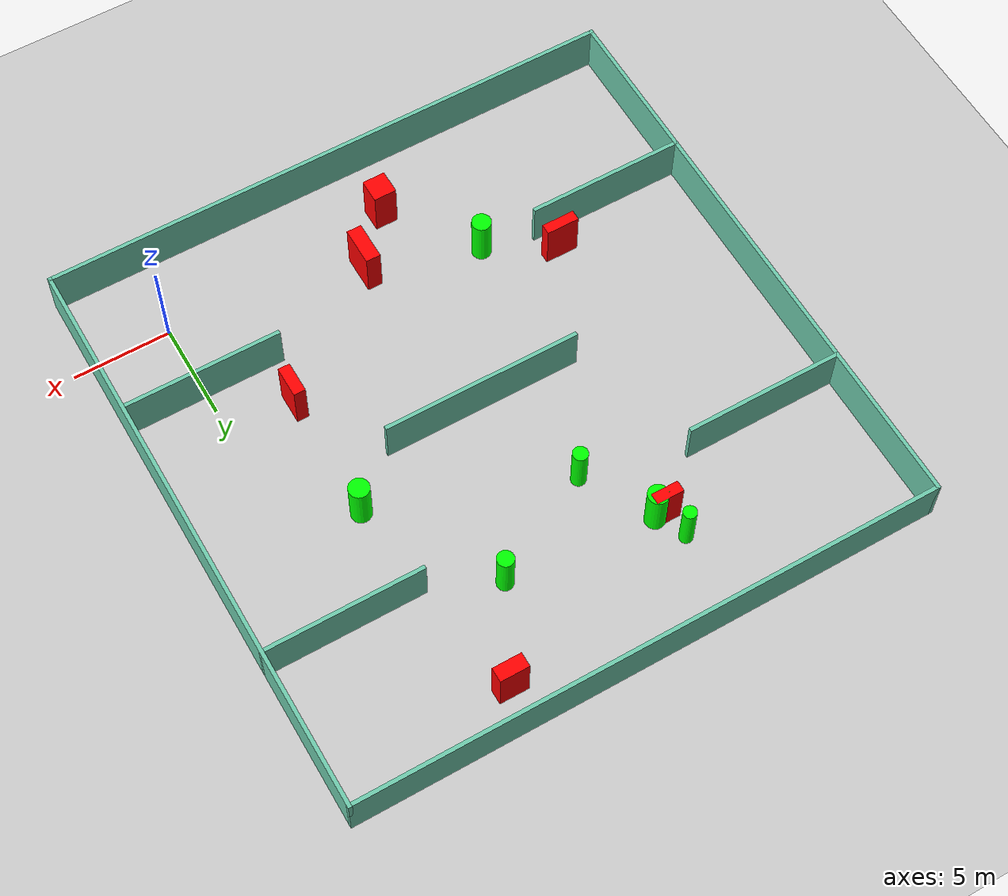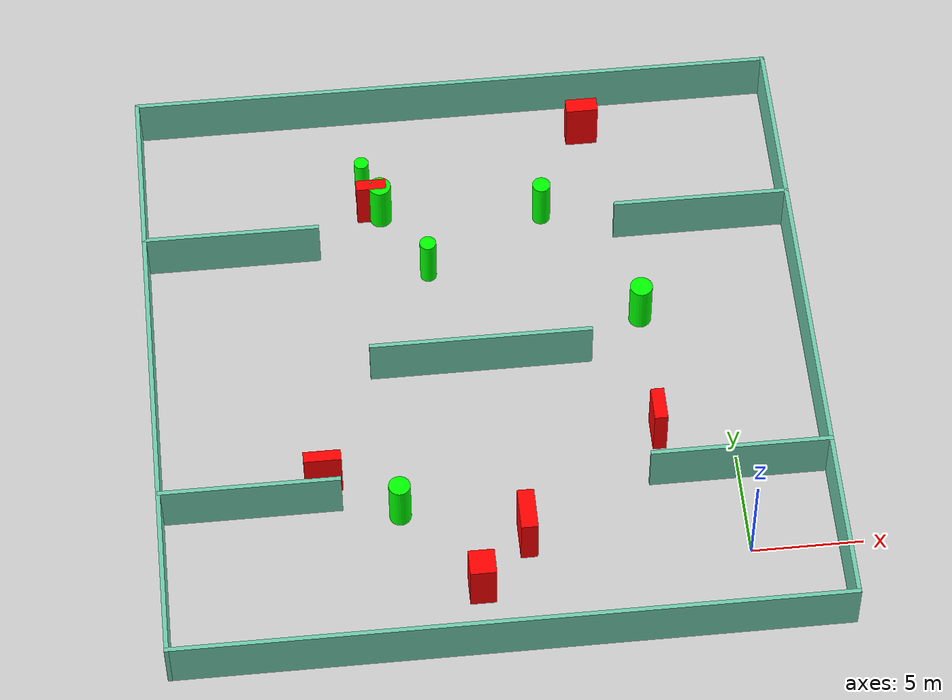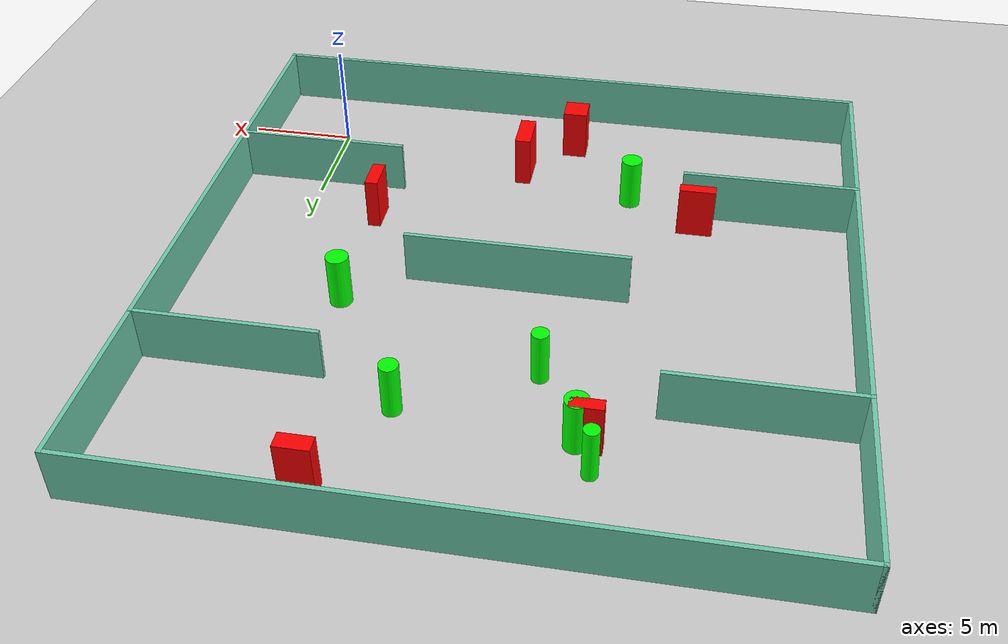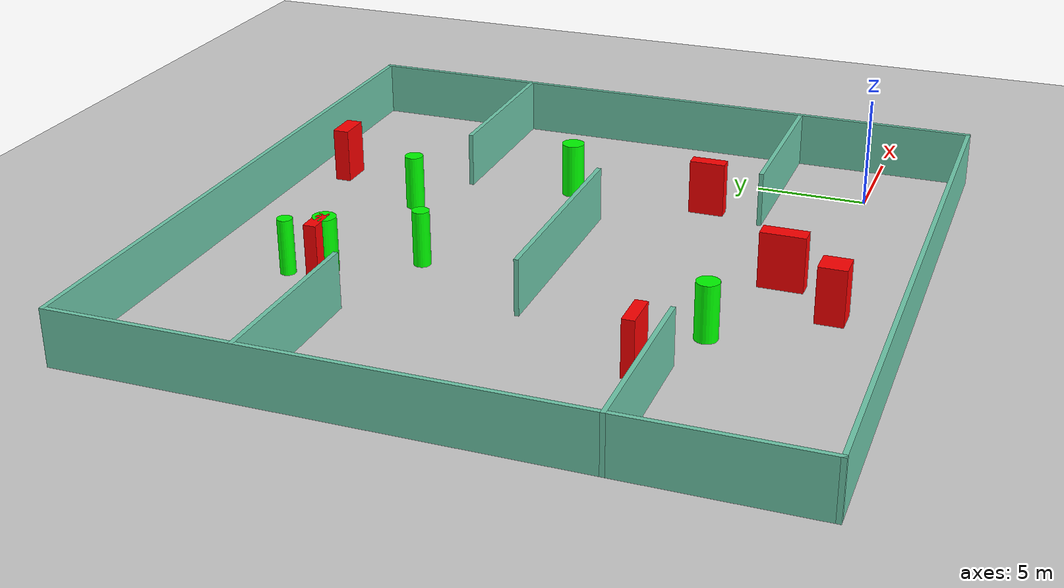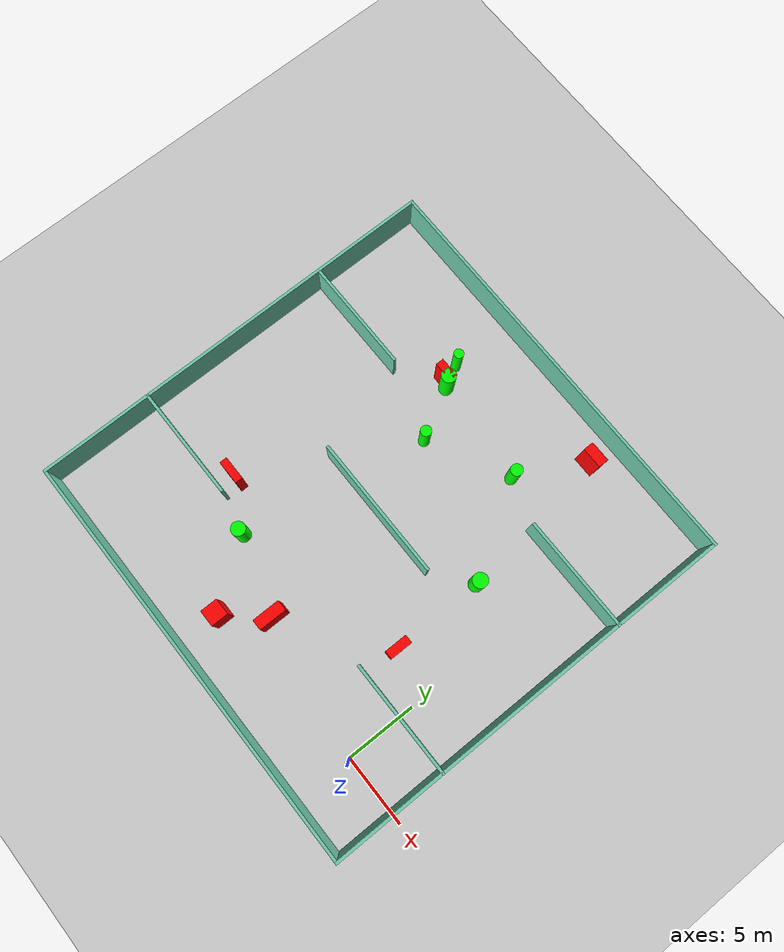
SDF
<sdf version="1.7">
 <world name="default">
  <light name="sun" type="directional">
   <pose>0 0 10 0 -0 0</pose>
   <diffuse>0.8 0.8 0.8 1</diffuse>
   <specular>0.2 0.2 0.2 1</specular>
   <attenuation>
    <range>1000</range>
    <constant>0.9</constant>
    <linear>0.01</linear>
    <quadratic>0.001</quadratic>
   </attenuation>
   <direction>-0.5 0.1 -0.9</direction>
   <spot><inner_angle>0</inner_angle><outer_angle>0</outer_angle><falloff>0</falloff></spot>
  </light>
  <model name="ground_plane">
   <static>1</static>
   <link name="link">
    <collision name="collision">
     <geometry><plane><normal>0 0 1</normal><size>100 100</size></plane></geometry>
     <surface>
      <contact><collide_bitmask>65535</collide_bitmask></contact>
      <friction><ode><mu>100</mu><mu2>50</mu2></ode></friction>
     </surface>
    </collision>
    <visual name="visual">
     <cast_shadows>0</cast_shadows>
     <geometry><plane><normal>0 0 1</normal><size>100 100</size></plane></geometry>
     <material>
      <script><uri>file://media/materials/scripts/gazebo.material</uri><name>Gazebo/Grey</name></script>
     </material>
    </visual>
   </link>
  </model>
  <gravity>0 0 -9.8</gravity>
  <magnetic_field>6e-06 2.3e-05 -4.2e-05</magnetic_field>
  <atmosphere type="adiabatic"/>
  <physics type="ode">
   <max_step_size>0.001</max_step_size>
   <real_time_factor>1</real_time_factor>
   <real_time_update_rate>1000</real_time_update_rate>
  </physics>
  <scene><ambient>0.4 0.4 0.4 1</ambient><background>0.7 0.7 0.7 1</background><shadows>1</shadows></scene>
  <spherical_coordinates>
   <surface_model>EARTH_WGS84</surface_model>
   <latitude_deg>0</latitude_deg>
   <longitude_deg>0</longitude_deg>
   <elevation>0</elevation>
   <heading_deg>0</heading_deg>
  </spherical_coordinates>
  <model name="my_base_walls">
   <link name="Wall_10">
    <collision name="Wall_10_Collision">
     <geometry><box><size>8.2 0.2 2.5</size></box></geometry>
     <pose>0 0 1.25 0 -0 0</pose>
    </collision>
    <visual name="Wall_10_Visual">
     <pose>0 0 1.25 0 -0 0</pose>
     <geometry><box><size>8.2 0.2 2.5</size></box></geometry>
     <material>
      <script><uri>file://media/materials/scripts/gazebo.material</uri><name>Gazebo/Grey</name></script>
      <ambient>0.435294 0.796078 0.67451 1</ambient>
     </material>
     <meta><layer>0</layer></meta>
    </visual>
    <pose>-11 -7 0 0 -0 0</pose>
   </link>
   <link name="Wall_12">
    <collision name="Wall_12_Collision">
     <geometry><box><size>8.2 0.2 2.5</size></box></geometry>
     <pose>0 0 1.25 0 -0 0</pose>
    </collision>
    <visual name="Wall_12_Visual">
     <pose>0 0 1.25 0 -0 0</pose>
     <geometry><box><size>8.2 0.2 2.5</size></box></geometry>
     <material>
      <script><uri>file://media/materials/scripts/gazebo.material</uri><name>Gazebo/Grey</name></script>
      <ambient>0.435294 0.796078 0.67451 1</ambient>
     </material>
     <meta><layer>0</layer></meta>
    </visual>
    <pose>-11 7 0 0 -0 0</pose>
   </link>
   <link name="Wall_14">
    <collision name="Wall_14_Collision">
     <geometry><box><size>8.2 0.2 2.5</size></box></geometry>
     <pose>0 0 1.25 0 -0 0</pose>
    </collision>
    <visual name="Wall_14_Visual">
     <pose>0 0 1.25 0 -0 0</pose>
     <geometry><box><size>8.2 0.2 2.5</size></box></geometry>
     <material>
      <script><uri>file://media/materials/scripts/gazebo.material</uri><name>Gazebo/Grey</name></script>
      <ambient>0.435294 0.796078 0.67451 1</ambient>
     </material>
     <meta><layer>0</layer></meta>
    </visual>
    <pose>11 7 0 0 -0 3.14159</pose>
   </link>
   <link name="Wall_16">
    <collision name="Wall_16_Collision">
     <geometry><box><size>10.2 0.2 2.5</size></box></geometry>
     <pose>0 0 1.25 0 -0 0</pose>
    </collision>
    <visual name="Wall_16_Visual">
     <pose>0 0 1.25 0 -0 0</pose>
     <geometry><box><size>10.2 0.2 2.5</size></box></geometry>
     <material>
      <script><uri>file://media/materials/scripts/gazebo.material</uri><name>Gazebo/Grey</name></script>
      <ambient>0.435294 0.796078 0.67451 1</ambient>
     </material>
     <meta><layer>0</layer></meta>
    </visual>
    <pose>0 0 0 0 -0 3.14159</pose>
   </link>
   <link name="Wall_2">
    <collision name="Wall_2_Collision">
     <geometry><box><size>30.2 0.2 2.5</size></box></geometry>
     <pose>0 0 1.25 0 -0 0</pose>
    </collision>
    <visual name="Wall_2_Visual">
     <pose>0 0 1.25 0 -0 0</pose>
     <geometry><box><size>30.2 0.2 2.5</size></box></geometry>
     <material>
      <script><uri>file://media/materials/scripts/gazebo.material</uri><name>Gazebo/Grey</name></script>
      <ambient>0.435294 0.796078 0.67451 1</ambient>
     </material>
     <meta><layer>0</layer></meta>
    </visual>
    <pose>0 -15 0 0 -0 3.14159</pose>
   </link>
   <link name="Wall_3">
    <collision name="Wall_3_Collision">
     <geometry><box><size>30.2 0.2 2.5</size></box></geometry>
     <pose>0 0 1.25 0 -0 0</pose>
    </collision>
    <visual name="Wall_3_Visual">
     <pose>0 0 1.25 0 -0 0</pose>
     <geometry><box><size>30.2 0.2 2.5</size></box></geometry>
     <material>
      <script><uri>file://media/materials/scripts/gazebo.material</uri><name>Gazebo/Grey</name></script>
      <ambient>0.435294 0.796078 0.67451 1</ambient>
     </material>
     <meta><layer>0</layer></meta>
    </visual>
    <pose>-15 0 0 0 -0 1.5708</pose>
   </link>
   <link name="Wall_4">
    <collision name="Wall_4_Collision">
     <geometry><box><size>30.2 0.2 2.5</size></box></geometry>
     <pose>0 0 1.25 0 -0 0</pose>
    </collision>
    <visual name="Wall_4_Visual">
     <pose>0 0 1.25 0 -0 0</pose>
     <geometry><box><size>30.2 0.2 2.5</size></box></geometry>
     <material>
      <script><uri>file://media/materials/scripts/gazebo.material</uri><name>Gazebo/Grey</name></script>
      <ambient>0.435294 0.796078 0.67451 1</ambient>
     </material>
     <meta><layer>0</layer></meta>
    </visual>
    <pose>0 15 0 0 -0 0</pose>
   </link>
   <link name="Wall_6">
    <collision name="Wall_6_Collision">
     <geometry><box><size>30.2 0.2 2.5</size></box></geometry>
     <pose>0 0 1.25 0 -0 0</pose>
    </collision>
    <visual name="Wall_6_Visual">
     <pose>0 0 1.25 0 -0 0</pose>
     <geometry><box><size>30.2 0.2 2.5</size></box></geometry>
     <material>
      <script><uri>file://media/materials/scripts/gazebo.material</uri><name>Gazebo/Grey</name></script>
      <ambient>0.435294 0.796078 0.67451 1</ambient>
     </material>
     <meta><layer>0</layer></meta>
    </visual>
    <pose>15 0 0 0 -0 1.5708</pose>
   </link>
   <link name="Wall_8">
    <collision name="Wall_8_Collision">
     <geometry><box><size>8.2 0.2 2.5</size></box></geometry>
     <pose>0 0 1.25 0 -0 0</pose>
    </collision>
    <visual name="Wall_8_Visual">
     <pose>0 0 1.25 0 -0 0</pose>
     <geometry><box><size>8.2 0.2 2.5</size></box></geometry>
     <material>
      <script><uri>file://media/materials/scripts/gazebo.material</uri><name>Gazebo/Grey</name></script>
      <ambient>0.435294 0.796078 0.67451 1</ambient>
     </material>
     <meta><layer>0</layer></meta>
    </visual>
    <pose>11 -7 0 0 -0 3.14159</pose>
   </link>
   <static>1</static>
   <pose>-11 11 0 0 -0 0</pose>
  </model>
  <model name="cylinder1">
   <static>1</static>
   <link name="link">
    <inertial>
     <mass>1</mass>
     <inertia><ixx>0.5</ixx><ixy>0</ixy><ixz>0</ixz><iyy>0.5</iyy><iyz>0</iyz><izz>1</izz></inertia>
    </inertial>
    <collision name="collision">
     <geometry><cylinder><radius>0.42034092675874973</radius><length>2.5</length></cylinder></geometry>
    </collision>
    <visual name="visual">
     <geometry><cylinder><radius>0.42034092675874973</radius><length>2.5</length></cylinder></geometry>
     <material>
      <ambient>0 1 0 1</ambient>
      <diffuse>0 1 0 1</diffuse>
      <specular>0.1 0.1 0.1 1</specular>
      <emissive>0 0 0 0</emissive>
     </material>
    </visual>
   </link>
   <pose>-7.35415569136422 19.426613920231144 1.25 0 0 0</pose>
  </model>
  <model name="cylinder2">
   <static>1</static>
   <link name="link">
    <inertial>
     <mass>1</mass>
     <inertia><ixx>0.5</ixx><ixy>0</ixy><ixz>0</ixz><iyy>0.5</iyy><iyz>0</iyz><izz>1</izz></inertia>
    </inertial>
    <collision name="collision">
     <geometry><cylinder><radius>0.5192235002974264</radius><length>2.5</length></cylinder></geometry>
    </collision>
    <visual name="visual">
     <geometry><cylinder><radius>0.5192235002974264</radius><length>2.5</length></cylinder></geometry>
     <material>
      <ambient>0 1 0 1</ambient>
      <diffuse>0 1 0 1</diffuse>
      <specular>0.1 0.1 0.1 1</specular>
      <emissive>0 0 0 0</emissive>
     </material>
    </visual>
   </link>
   <pose>-3.4098951919506355 13.10824842220828 1.25 0 0 0</pose>
  </model>
  <model name="cylinder3">
   <static>1</static>
   <link name="link">
    <inertial>
     <mass>1</mass>
     <inertia><ixx>0.5</ixx><ixy>0</ixy><ixz>0</ixz><iyy>0.5</iyy><iyz>0</iyz><izz>1</izz></inertia>
    </inertial>
    <collision name="collision">
     <geometry><cylinder><radius>0.34000899449073485</radius><length>2.5</length></cylinder></geometry>
    </collision>
    <visual name="visual">
     <geometry><cylinder><radius>0.34000899449073485</radius><length>2.5</length></cylinder></geometry>
     <material>
      <ambient>0 1 0 1</ambient>
      <diffuse>0 1 0 1</diffuse>
      <specular>0.1 0.1 0.1 1</specular>
      <emissive>0 0 0 0</emissive>
     </material>
    </visual>
   </link>
   <pose>-15.649905961845194 21.54122645631577 1.25 0 0 0</pose>
  </model>
  <model name="cylinder4">
   <static>1</static>
   <link name="link">
    <inertial>
     <mass>1</mass>
     <inertia><ixx>0.5</ixx><ixy>0</ixy><ixz>0</ixz><iyy>0.5</iyy><iyz>0</iyz><izz>1</izz></inertia>
    </inertial>
    <collision name="collision">
     <geometry><cylinder><radius>0.4924977645370986</radius><length>2.5</length></cylinder></geometry>
    </collision>
    <visual name="visual">
     <geometry><cylinder><radius>0.4924977645370986</radius><length>2.5</length></cylinder></geometry>
     <material>
      <ambient>0 1 0 1</ambient>
      <diffuse>0 1 0 1</diffuse>
      <specular>0.1 0.1 0.1 1</specular>
      <emissive>0 0 0 0</emissive>
     </material>
    </visual>
   </link>
   <pose>-15.364727275529884 3.3492452837855913 1.25 0 0 0</pose>
  </model>
  <model name="cylinder5">
   <static>1</static>
   <link name="link">
    <inertial>
     <mass>1</mass>
     <inertia><ixx>0.5</ixx><ixy>0</ixy><ixz>0</ixz><iyy>0.5</iyy><iyz>0</iyz><izz>1</izz></inertia>
    </inertial>
    <collision name="collision">
     <geometry><cylinder><radius>0.5175120851097088</radius><length>2.5</length></cylinder></geometry>
    </collision>
    <visual name="visual">
     <geometry><cylinder><radius>0.5175120851097088</radius><length>2.5</length></cylinder></geometry>
     <material>
      <ambient>0 1 0 1</ambient>
      <diffuse>0 1 0 1</diffuse>
      <specular>0.1 0.1 0.1 1</specular>
      <emissive>0 0 0 0</emissive>
     </material>
    </visual>
   </link>
   <pose>-14.901253626709407 20.08105721537761 1.25 0 0 0</pose>
  </model>
  <model name="cylinder6">
   <static>1</static>
   <link name="link">
    <inertial>
     <mass>1</mass>
     <inertia><ixx>0.5</ixx><ixy>0</ixy><ixz>0</ixz><iyy>0.5</iyy><iyz>0</iyz><izz>1</izz></inertia>
    </inertial>
    <collision name="collision">
     <geometry><cylinder><radius>0.38089099129095505</radius><length>2.5</length></cylinder></geometry>
    </collision>
    <visual name="visual">
     <geometry><cylinder><radius>0.38089099129095505</radius><length>2.5</length></cylinder></geometry>
     <material>
      <ambient>0 1 0 1</ambient>
      <diffuse>0 1 0 1</diffuse>
      <specular>0.1 0.1 0.1 1</specular>
      <emissive>0 0 0 0</emissive>
     </material>
    </visual>
   </link>
   <pose>-12.942281096399675 16.55628218906425 1.25 0 0 0</pose>
  </model>
  <model name="box1">
   <static>1</static>
   <link name="link">
    <inertial>
     <mass>1</mass>
     <inertia><ixx>0.083</ixx><ixy>0</ixy><ixz>0</ixz><iyy>0.083</iyy><iyz>0</iyz><izz>0.083</izz></inertia>
    </inertial>
    <collision name="collision">
     <geometry><box><size>0.7628326215021388 1.968076855733605 2.5</size></box></geometry>
    </collision>
    <visual name="visual">
     <geometry><box><size>0.7628326215021388 1.968076855733605 2.5</size></box></geometry>
     <material>
      <ambient>1 0 0 1</ambient>
      <diffuse>1 0 0 1</diffuse>
      <specular>0.1 0.1 0.1 1</specular>
      <emissive>0 0 0 0</emissive>
     </material>
    </visual>
    <sensor name="my_contact" type="contact">
     <contact><collision>box_collision</collision><topic>__default_topic__</topic></contact>
    </sensor>
   </link>
   <pose>-9.855812937682888 1.6111439999628265 1.25 0 0 0</pose>
  </model>
  <model name="box2">
   <static>1</static>
   <link name="link">
    <inertial>
     <mass>1</mass>
     <inertia><ixx>0.083</ixx><ixy>0</ixy><ixz>0</ixz><iyy>0.083</iyy><iyz>0</iyz><izz>0.083</izz></inertia>
    </inertial>
    <collision name="collision">
     <geometry><box><size>1.1720885525276075 1.2107431641910436 2.5</size></box></geometry>
    </collision>
    <visual name="visual">
     <geometry><box><size>1.1720885525276075 1.2107431641910436 2.5</size></box></geometry>
     <material>
      <ambient>1 0 0 1</ambient>
      <diffuse>1 0 0 1</diffuse>
      <specular>0.1 0.1 0.1 1</specular>
      <emissive>0 0 0 0</emissive>
     </material>
    </visual>
    <sensor name="my_contact" type="contact">
     <contact><collision>box_collision</collision><topic>__default_topic__</topic></contact>
    </sensor>
   </link>
   <pose>-12.098843227501265 -0.933827482547307 1.25 0 0 0</pose>
  </model>
  <model name="box3">
   <static>1</static>
   <link name="link">
    <inertial>
     <mass>1</mass>
     <inertia><ixx>0.083</ixx><ixy>0</ixy><ixz>0</ixz><iyy>0.083</iyy><iyz>0</iyz><izz>0.083</izz></inertia>
    </inertial>
    <collision name="collision">
     <geometry><box><size>1.6973786005276386 0.5347049146835372 2.5</size></box></geometry>
    </collision>
    <visual name="visual">
     <geometry><box><size>1.6973786005276386 0.5347049146835372 2.5</size></box></geometry>
     <material>
      <ambient>1 0 0 1</ambient>
      <diffuse>1 0 0 1</diffuse>
      <specular>0.1 0.1 0.1 1</specular>
      <emissive>0 0 0 0</emissive>
     </material>
    </visual>
    <sensor name="my_contact" type="contact">
     <contact><collision>box_collision</collision><topic>__default_topic__</topic></contact>
    </sensor>
   </link>
   <pose>-18.655378255361082 5.253557738580449 1.25 0 0 0</pose>
  </model>
  <model name="box4">
   <static>1</static>
   <link name="link">
    <inertial>
     <mass>1</mass>
     <inertia><ixx>0.083</ixx><ixy>0</ixy><ixz>0</ixz><iyy>0.083</iyy><iyz>0</iyz><izz>0.083</izz></inertia>
    </inertial>
    <collision name="collision">
     <geometry><box><size>0.6088276043982805 1.5992599639373548 2.5</size></box></geometry>
    </collision>
    <visual name="visual">
     <geometry><box><size>0.6088276043982805 1.5992599639373548 2.5</size></box></geometry>
     <material>
      <ambient>1 0 0 1</ambient>
      <diffuse>1 0 0 1</diffuse>
      <specular>0.1 0.1 0.1 1</specular>
      <emissive>0 0 0 0</emissive>
     </material>
    </visual>
    <sensor name="my_contact" type="contact">
     <contact><collision>box_collision</collision><topic>__default_topic__</topic></contact>
    </sensor>
   </link>
   <pose>-3.3953743364100326 6.594483605290041 1.25 0 0 0</pose>
  </model>
  <model name="box5">
   <static>1</static>
   <link name="link">
    <inertial>
     <mass>1</mass>
     <inertia><ixx>0.083</ixx><ixy>0</ixy><ixz>0</ixz><iyy>0.083</iyy><iyz>0</iyz><izz>0.083</izz></inertia>
    </inertial>
    <collision name="collision">
     <geometry><box><size>1.4866932312013543 0.7357572585917325 2.5</size></box></geometry>
    </collision>
    <visual name="visual">
     <geometry><box><size>1.4866932312013543 0.7357572585917325 2.5</size></box></geometry>
     <material>
      <ambient>1 0 0 1</ambient>
      <diffuse>1 0 0 1</diffuse>
      <specular>0.1 0.1 0.1 1</specular>
      <emissive>0 0 0 0</emissive>
     </material>
    </visual>
    <sensor name="my_contact" type="contact">
     <contact><collision>box_collision</collision><topic>__default_topic__</topic></contact>
    </sensor>
   </link>
   <pose>-4.95786273799888 24.00515850568835 1.25 0 0 0</pose>
  </model>
  <model name="box6">
   <static>1</static>
   <link name="link">
    <inertial>
     <mass>1</mass>
     <inertia><ixx>0.083</ixx><ixy>0</ixy><ixz>0</ixz><iyy>0.083</iyy><iyz>0</iyz><izz>0.083</izz></inertia>
    </inertial>
    <collision name="collision">
     <geometry><box><size>1.4041425306225856 0.560915954477077 2.5</size></box></geometry>
    </collision>
    <visual name="visual">
     <geometry><box><size>1.4041425306225856 0.560915954477077 2.5</size></box></geometry>
     <material>
      <ambient>1 0 0 1</ambient>
      <diffuse>1 0 0 1</diffuse>
      <specular>0.1 0.1 0.1 1</specular>
      <emissive>0 0 0 0</emissive>
     </material>
    </visual>
    <sensor name="my_contact" type="contact">
     <contact><collision>box_collision</collision><topic>__default_topic__</topic></contact>
    </sensor>
   </link>
   <pose>-15.302850504190795 20.209735034768023 1.25 0 0 0</pose>
  </model>
 </world>
</sdf>
